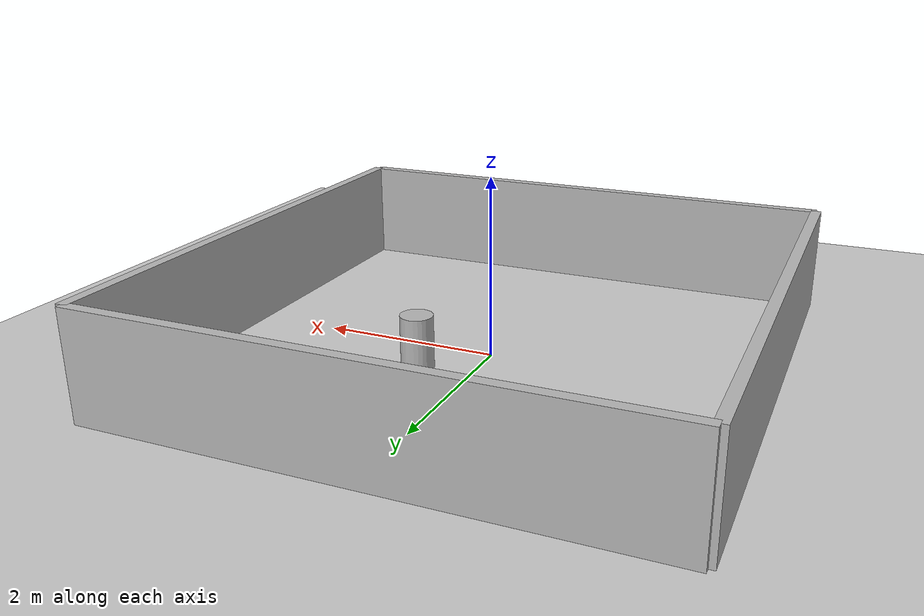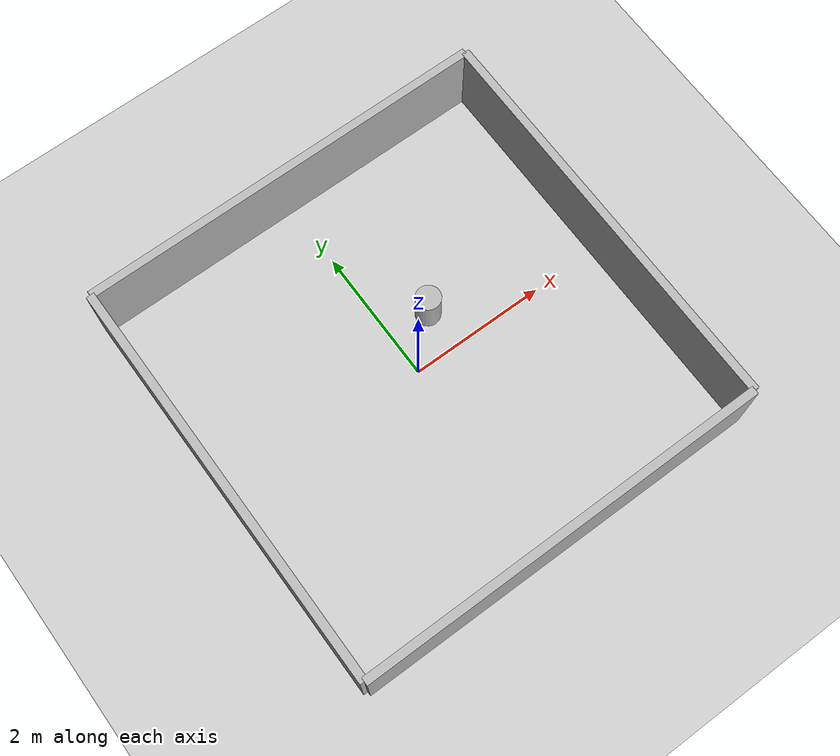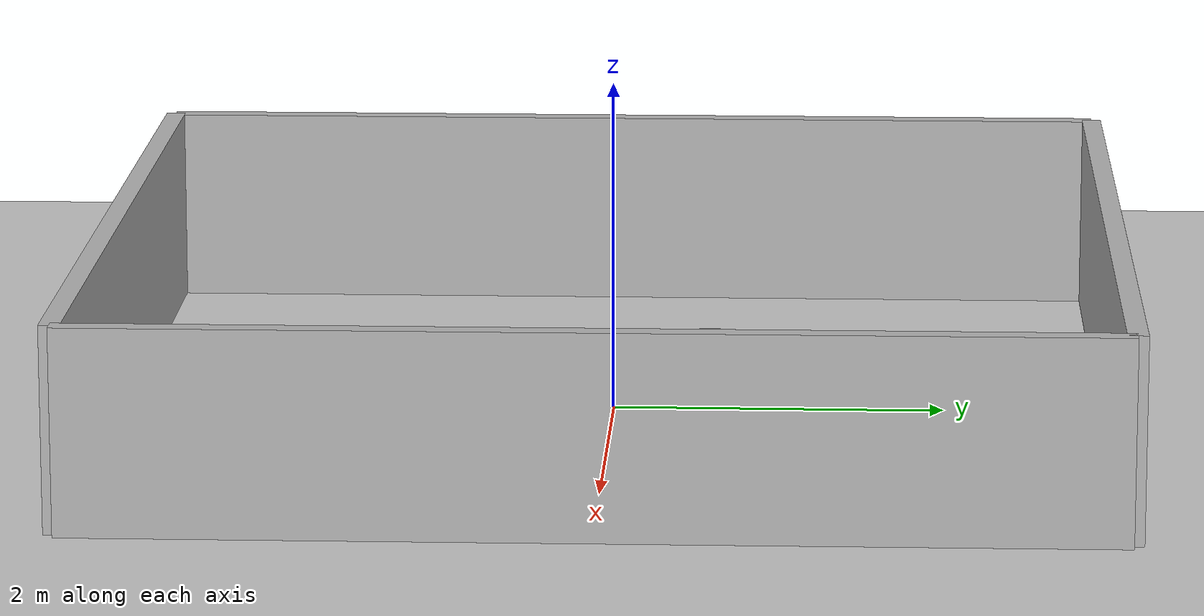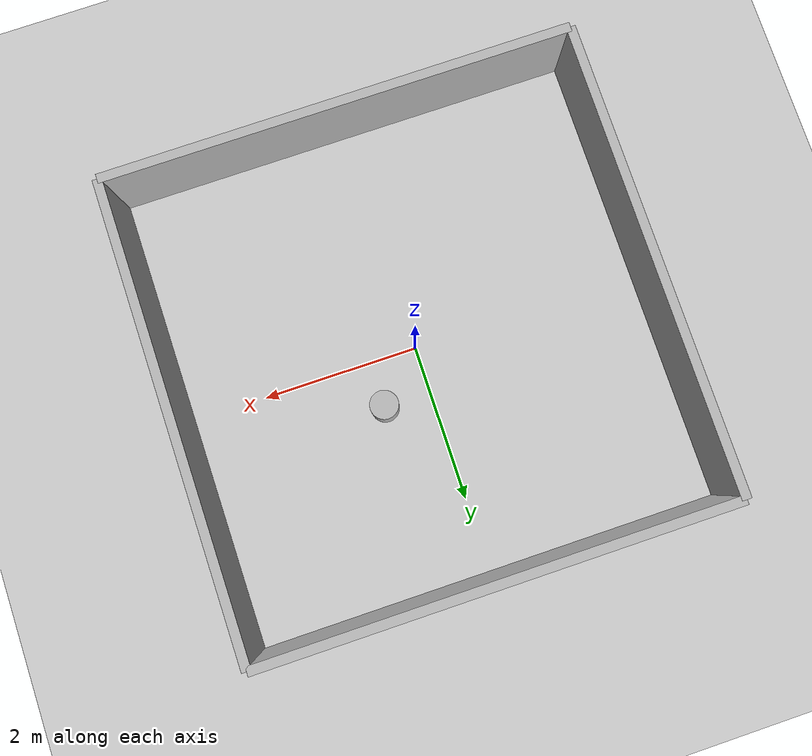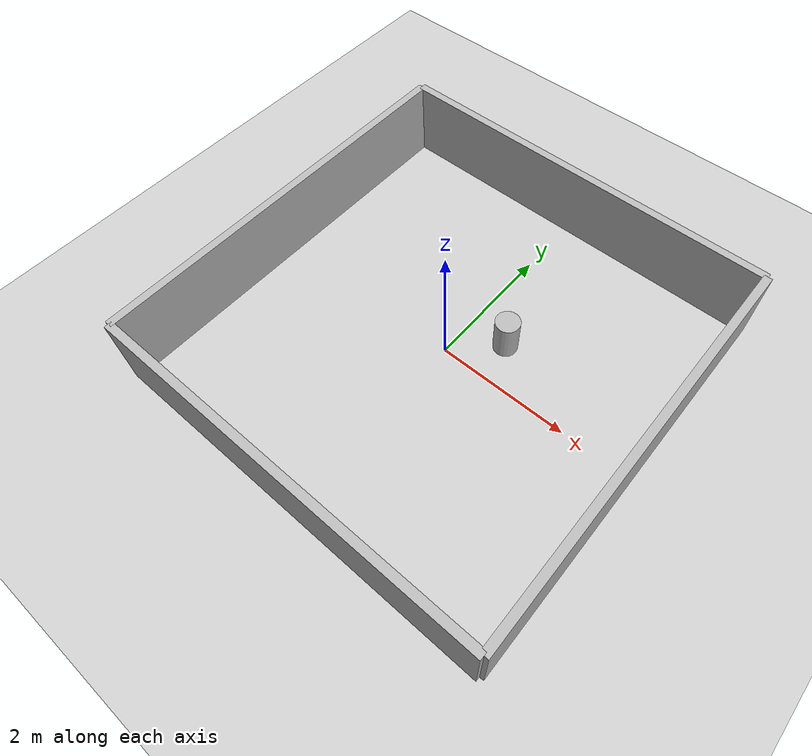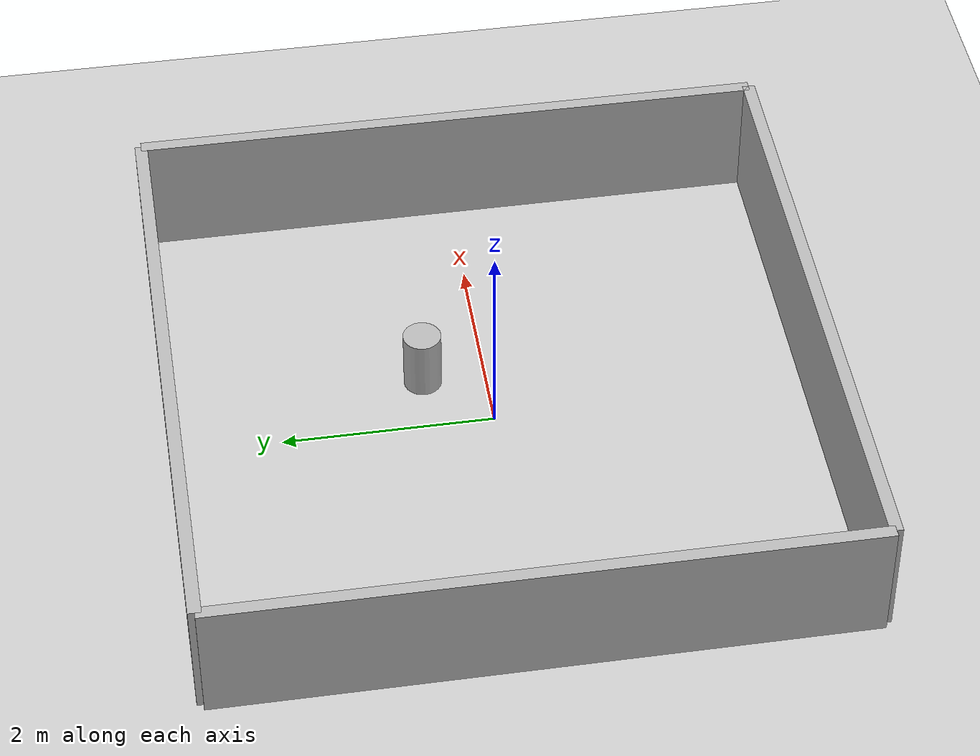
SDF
<?xml version="1.0" ?>
<sdf version="1.6">
  <world name="room_box">
    <physics type="ode">
      <max_step_size>0.001</max_step_size>
      <real_time_factor>1.0</real_time_factor>
      <real_time_update_rate>1000</real_time_update_rate>
    </physics>

    <include><uri>model://ground_plane</uri></include>
    <include><uri>model://sun</uri></include>

    <scene>
      <shadows>false</shadows>
    </scene>

    <!-- north/south walls -->
    <model name="wall_north">
      <static>true</static>
      <pose>0 3 0.6 0 0 0</pose>
      <link name="link">
        <collision name="collision"><geometry><box><size>6 0.12 1.2</size></box></geometry></collision>
        <visual name="visual"><geometry><box><size>6 0.12 1.2</size></box></geometry></visual>
      </link>
    </model>

    <model name="wall_south">
      <static>true</static>
      <pose>0 -3 0.6 0 0 0</pose>
      <link name="link">
        <collision name="collision"><geometry><box><size>6 0.12 1.2</size></box></geometry></collision>
        <visual name="visual"><geometry><box><size>6 0.12 1.2</size></box></geometry></visual>
      </link>
    </model>

    <!-- east/west walls -->
    <model name="wall_east">
      <static>true</static>
      <pose>3 0 0.6 0 0 0</pose>
      <link name="link">
        <collision name="collision"><geometry><box><size>0.12 6 1.2</size></box></geometry></collision>
        <visual name="visual"><geometry><box><size>0.12 6 1.2</size></box></geometry></visual>
      </link>
    </model>

    <model name="wall_west">
      <static>true</static>
      <pose>-3 0 0.6 0 0 0</pose>
      <link name="link">
        <collision name="collision"><geometry><box><size>0.12 6 1.2</size></box></geometry></collision>
        <visual name="visual"><geometry><box><size>0.12 6 1.2</size></box></geometry></visual>
      </link>
    </model>

    <!-- optional obstacle -->
    <model name="pillar">
      <static>true</static>
      <pose>0.6 0.6 0.3 0 0 0</pose>
      <link name="link">
        <collision name="collision">
          <geometry><cylinder><radius>0.18</radius><length>0.6</length></cylinder></geometry>
        </collision>
        <visual name="visual">
          <geometry><cylinder><radius>0.18</radius><length>0.6</length></cylinder></geometry>
        </visual>
      </link>
    </model>
  </world>
</sdf>
